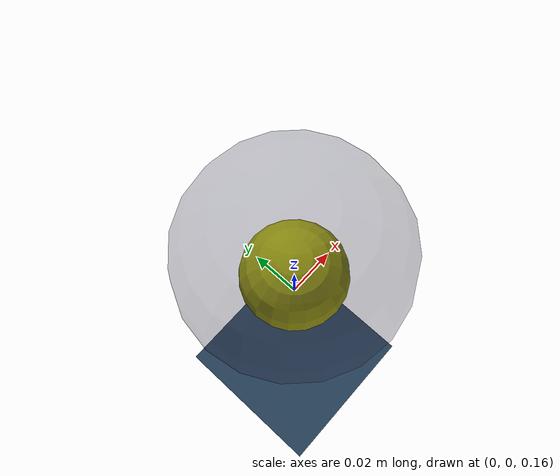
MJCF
<mujoco model="sand-ball">

  <asset>
    <texture name="ball" type="cube" builtin="flat" mark="cross" width="13" height="13" rgb1="0.2 0.2 0.3" rgb2="0.2 0.2 0.3" markrgb="1 1 1"/>
    <material name="ball" texture="ball" texuniform="true" rgba="1 1 1 0.3"/>
    <texture name="grid" type="2d" builtin="checker" width="512" height="512" rgb1=".1 .2 .3" rgb2=".2 .3 .4"/>
    <material name="grid" texture="grid" texrepeat="5 5" texuniform="true" reflectance=".2"/>
  </asset>

  <visual>
    <headlight ambient="0.3 0.3 0.3"/>
    <map stiffness="3000"/>
  </visual>

  <default>
    <geom condim="6" friction="0.8 0.004 0.006"/>
  </default>

  <option density="1.225" viscosity="1.8e-5" timestep="1e-4" integrator="RK4"/>

  <worldbody>
    <geom type="plane" size="2 2 .02" material="grid"/>
    <body name="sphere" pos="0 0 .2">
      <light pos="0 0 1" mode="track"/>
      <freejoint/>
      <geom size=".04" mass=".02" material="ball"/>
      <body name="sand">
        <joint type="ball" frictionloss=".015"/>
        <geom size=".02" rgba="0.7 0.7 0 1" mass=".2" pos="0 0 -.02" contype="0" conaffinity="0"/>
      </body>
    </body>
  </worldbody>

</mujoco>
